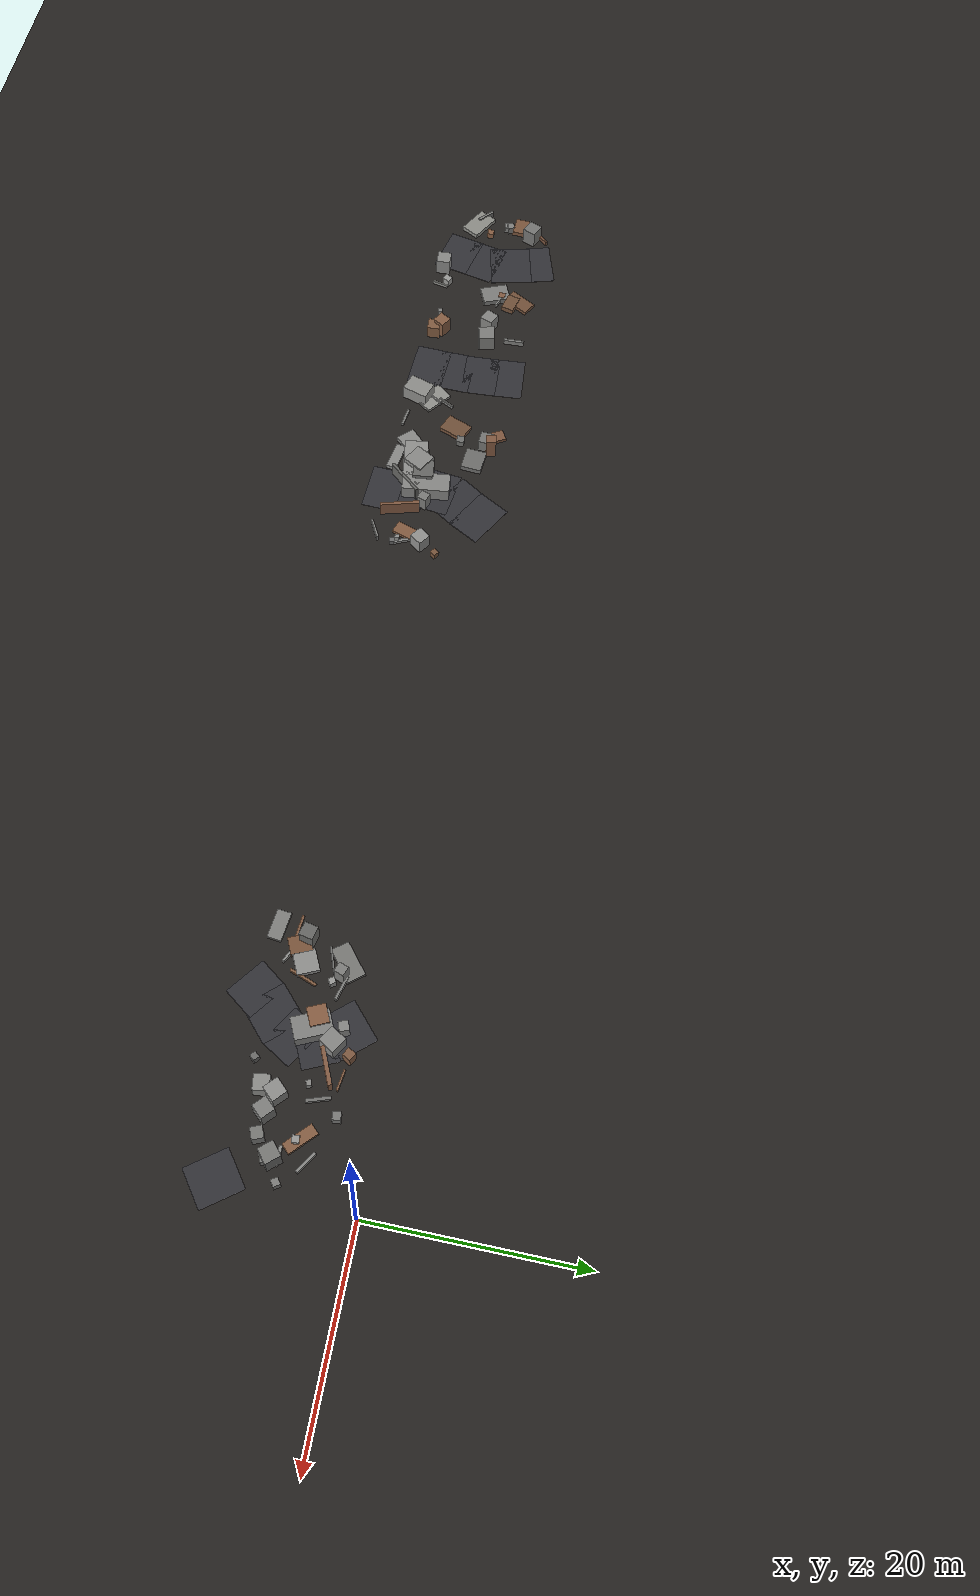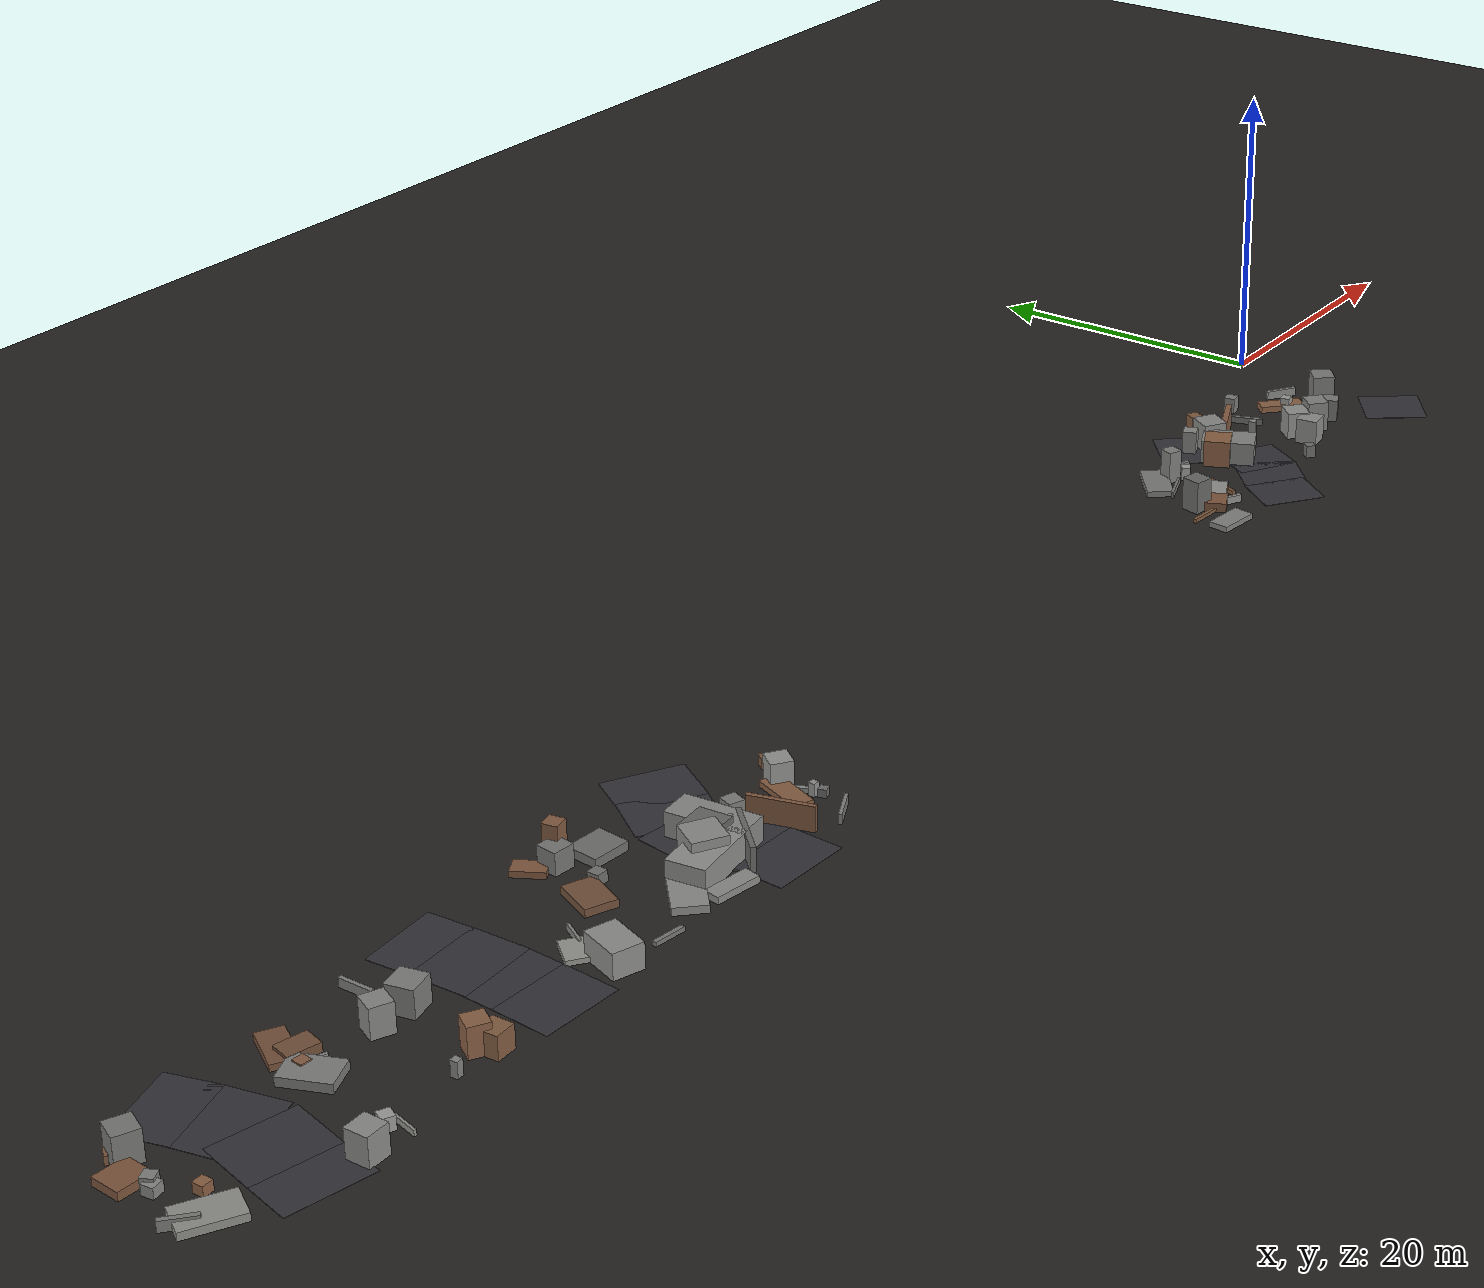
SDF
<sdf version="1.6">
 <world name="navitas_arena">
  <model name="ground_plane">
   <static>true</static>
   <link name="link">
    <collision name="collision">
     <geometry><plane><normal>0 0 1</normal><size>400 400</size></plane></geometry>
     <surface><friction><ode><mu>0.750</mu><mu2>0.750</mu2></ode></friction></surface>
    </collision>
    <visual name="visual">
     <cast_shadows>false</cast_shadows>
     <geometry><plane><normal>0 0 1</normal><size>400 400</size></plane></geometry>
     <material><ambient>0.150 0.140 0.130 1</ambient><diffuse>0.150 0.140 0.130 1</diffuse></material>
    </visual>
   </link>
  </model>
  <model name="road_kolay_1_7">
   <static>true</static>
   <pose>-107.914 -12.340 0.040 0 0 1.349</pose>
   <link name="link">
    <collision name="col"><geometry><box><size>3.811 5.100 0.020</size></box></geometry></collision>
    <visual name="vis">
     <geometry><box><size>3.811 5.100 0.020</size></box></geometry>
     <material><ambient>0.20 0.20 0.22 1</ambient><diffuse>0.20 0.20 0.22 1</diffuse></material>
    </visual>
   </link>
  </model>
  <model name="road_kolay_1_8">
   <static>true</static>
   <pose>-107.250 -9.460 0.040 0 0 1.339</pose>
   <link name="link">
    <collision name="col"><geometry><box><size>3.900 5.100 0.020</size></box></geometry></collision>
    <visual name="vis">
     <geometry><box><size>3.900 5.100 0.020</size></box></geometry>
     <material><ambient>0.20 0.20 0.22 1</ambient><diffuse>0.20 0.20 0.22 1</diffuse></material>
    </visual>
   </link>
  </model>
  <model name="road_kolay_1_9">
   <static>true</static>
   <pose>-107.311 -6.250 0.040 0 0 1.798</pose>
   <link name="link">
    <collision name="col"><geometry><box><size>4.493 5.100 0.020</size></box></geometry></collision>
    <visual name="vis">
     <geometry><box><size>4.493 5.100 0.020</size></box></geometry>
     <material><ambient>0.20 0.20 0.22 1</ambient><diffuse>0.20 0.20 0.22 1</diffuse></material>
    </visual>
   </link>
  </model>
  <model name="road_kolay_1_10">
   <static>true</static>
   <pose>-108.060 -3.333 0.040 0 0 1.857</pose>
   <link name="link">
    <collision name="col"><geometry><box><size>3.332 5.100 0.020</size></box></geometry></collision>
    <visual name="vis">
     <geometry><box><size>3.332 5.100 0.020</size></box></geometry>
     <material><ambient>0.20 0.20 0.22 1</ambient><diffuse>0.20 0.20 0.22 1</diffuse></material>
    </visual>
   </link>
  </model>
  <model name="road_kolay_2_3">
   <static>true</static>
   <pose>-90.850 -12.340 0.040 0 0 1.516</pose>
   <link name="link">
    <collision name="col"><geometry><box><size>3.744 5.100 0.020</size></box></geometry></collision>
    <visual name="vis">
     <geometry><box><size>3.744 5.100 0.020</size></box></geometry>
     <material><ambient>0.20 0.20 0.22 1</ambient><diffuse>0.20 0.20 0.22 1</diffuse></material>
    </visual>
   </link>
  </model>
  <model name="road_kolay_2_4">
   <static>true</static>
   <pose>-90.716 -9.460 0.040 0 0 1.532</pose>
   <link name="link">
    <collision name="col"><geometry><box><size>3.822 5.100 0.020</size></box></geometry></collision>
    <visual name="vis">
     <geometry><box><size>3.822 5.100 0.020</size></box></geometry>
     <material><ambient>0.20 0.20 0.22 1</ambient><diffuse>0.20 0.20 0.22 1</diffuse></material>
    </visual>
   </link>
  </model>
  <model name="road_kolay_2_5">
   <static>true</static>
   <pose>-90.721 -6.600 0.040 0 0 1.615</pose>
   <link name="link">
    <collision name="col"><geometry><box><size>3.703 5.100 0.020</size></box></geometry></collision>
    <visual name="vis">
     <geometry><box><size>3.703 5.100 0.020</size></box></geometry>
     <material><ambient>0.20 0.20 0.22 1</ambient><diffuse>0.20 0.20 0.22 1</diffuse></material>
    </visual>
   </link>
  </model>
  <model name="road_kolay_2_6">
   <static>true</static>
   <pose>-90.887 -3.800 0.040 0 0 1.645</pose>
   <link name="link">
    <collision name="col"><geometry><box><size>3.708 5.100 0.020</size></box></geometry></collision>
    <visual name="vis">
     <geometry><box><size>3.708 5.100 0.020</size></box></geometry>
     <material><ambient>0.20 0.20 0.22 1</ambient><diffuse>0.20 0.20 0.22 1</diffuse></material>
    </visual>
   </link>
  </model>
  <model name="road_kolay_3_6">
   <static>true</static>
   <pose>-73.682 -13.690 0.040 0 0 1.525</pose>
   <link name="link">
    <collision name="col"><geometry><box><size>3.523 5.100 0.020</size></box></geometry></collision>
    <visual name="vis">
     <geometry><box><size>3.523 5.100 0.020</size></box></geometry>
     <material><ambient>0.20 0.20 0.22 1</ambient><diffuse>0.20 0.20 0.22 1</diffuse></material>
    </visual>
   </link>
  </model>
  <model name="road_kolay_3_7">
   <static>true</static>
   <pose>-74.116 -10.910 0.040 0 0 1.894</pose>
   <link name="link">
    <collision name="col"><geometry><box><size>4.001 5.100 0.020</size></box></geometry></collision>
    <visual name="vis">
     <geometry><box><size>4.001 5.100 0.020</size></box></geometry>
     <material><ambient>0.20 0.20 0.22 1</ambient><diffuse>0.20 0.20 0.22 1</diffuse></material>
    </visual>
   </link>
  </model>
  <model name="road_kolay_3_8">
   <static>true</static>
   <pose>-74.431 -8.137 0.040 0 0 1.435</pose>
   <link name="link">
    <collision name="col"><geometry><box><size>3.531 5.100 0.020</size></box></geometry></collision>
    <visual name="vis">
     <geometry><box><size>3.531 5.100 0.020</size></box></geometry>
     <material><ambient>0.20 0.20 0.22 1</ambient><diffuse>0.20 0.20 0.22 1</diffuse></material>
    </visual>
   </link>
  </model>
  <model name="road_kolay_3_9">
   <static>true</static>
   <pose>-73.483 -5.667 0.040 0 0 0.988</pose>
   <link name="link">
    <collision name="col"><geometry><box><size>3.695 5.100 0.020</size></box></geometry></collision>
    <visual name="vis">
     <geometry><box><size>3.695 5.100 0.020</size></box></geometry>
     <material><ambient>0.20 0.20 0.22 1</ambient><diffuse>0.20 0.20 0.22 1</diffuse></material>
    </visual>
   </link>
  </model>
  <model name="road_kolay_3_10">
   <static>true</static>
   <pose>-72.039 -3.333 0.040 0 0 1.047</pose>
   <link name="link">
    <collision name="col"><geometry><box><size>3.595 5.100 0.020</size></box></geometry></collision>
    <visual name="vis">
     <geometry><box><size>3.595 5.100 0.020</size></box></geometry>
     <material><ambient>0.20 0.20 0.22 1</ambient><diffuse>0.20 0.20 0.22 1</diffuse></material>
    </visual>
   </link>
  </model>
  <model name="blk_kolay_1_0_1">
   <static>true</static>
   <pose>-105.365 -13.594 0.898 0 0 0.024</pose>
   <link name="link">
    <collision name="col"><geometry><box><size>1.462 1.462 1.797</size></box></geometry></collision>
    <visual name="vis">
     <geometry><box><size>1.462 1.462 1.797</size></box></geometry>
     <material><ambient>0.55 0.55 0.54 1</ambient><diffuse>0.55 0.55 0.54 1</diffuse></material>
    </visual>
   </link>
  </model>
  <model name="blk_kolay_3_0_0">
   <static>true</static>
   <pose>-72.522 -9.231 0.800 0 0 2.797</pose>
   <link name="link">
    <collision name="col"><geometry><box><size>0.989 0.989 1.600</size></box></geometry></collision>
    <visual name="vis">
     <geometry><box><size>0.989 0.989 1.600</size></box></geometry>
     <material><ambient>0.49 0.49 0.48 1</ambient><diffuse>0.49 0.49 0.48 1</diffuse></material>
    </visual>
   </link>
  </model>
  <model name="blk_kolay_3_0_1">
   <static>true</static>
   <pose>-74.504 -11.638 0.800 0 0 0.842</pose>
   <link name="link">
    <collision name="col"><geometry><box><size>4.191 0.314 1.600</size></box></geometry></collision>
    <visual name="vis">
     <geometry><box><size>4.191 0.314 1.600</size></box></geometry>
     <material><ambient>0.41 0.41 0.40 1</ambient><diffuse>0.41 0.41 0.40 1</diffuse></material>
    </visual>
   </link>
  </model>
  <model name="blk_kolay_3_0_2">
   <static>true</static>
   <pose>-74.145 -10.344 0.800 0 0 3.007</pose>
   <link name="link">
    <collision name="col"><geometry><box><size>0.618 0.618 1.600</size></box></geometry></collision>
    <visual name="vis">
     <geometry><box><size>0.618 0.618 1.600</size></box></geometry>
     <material><ambient>0.55 0.55 0.53 1</ambient><diffuse>0.55 0.55 0.53 1</diffuse></material>
    </visual>
   </link>
  </model>
  <model name="blk_kolay_3_0_3">
   <static>true</static>
   <pose>-76.757 -10.581 1.089 0 0 1.039</pose>
   <link name="link">
    <collision name="col"><geometry><box><size>2.173 2.173 2.178</size></box></geometry></collision>
    <visual name="vis">
     <geometry><box><size>2.173 2.173 2.178</size></box></geometry>
     <material><ambient>0.55 0.55 0.54 1</ambient><diffuse>0.55 0.55 0.54 1</diffuse></material>
    </visual>
   </link>
  </model>
  <model name="blk_kolay_3_0_4">
   <static>true</static>
   <pose>-75.678 -9.895 1.007 0 0 1.660</pose>
   <link name="link">
    <collision name="col"><geometry><box><size>2.089 2.089 2.014</size></box></geometry></collision>
    <visual name="vis">
     <geometry><box><size>2.089 2.089 2.014</size></box></geometry>
     <material><ambient>0.41 0.41 0.40 1</ambient><diffuse>0.41 0.41 0.40 1</diffuse></material>
    </visual>
   </link>
  </model>
  <model name="blk_kolay_3_0_5">
   <static>true</static>
   <pose>-71.123 -11.456 0.800 0 0 1.843</pose>
   <link name="link">
    <collision name="col"><geometry><box><size>4.054 0.293 1.600</size></box></geometry></collision>
    <visual name="vis">
     <geometry><box><size>4.054 0.293 1.600</size></box></geometry>
     <material><ambient>0.52 0.36 0.26 1</ambient><diffuse>0.52 0.36 0.26 1</diffuse></material>
    </visual>
   </link>
  </model>
  <model name="blk_kolay_3_0_6">
   <static>true</static>
   <pose>-74.360 -9.366 0.800 0 0 1.675</pose>
   <link name="link">
    <collision name="col"><geometry><box><size>4.912 2.156 1.600</size></box></geometry></collision>
    <visual name="vis">
     <geometry><box><size>4.912 2.156 1.600</size></box></geometry>
     <material><ambient>0.54 0.54 0.53 1</ambient><diffuse>0.54 0.54 0.53 1</diffuse></material>
    </visual>
   </link>
  </model>
  <model name="blk_kolay_3_0_7">
   <static>true</static>
   <pose>-77.112 -11.044 0.800 0 0 0.140</pose>
   <link name="link">
    <collision name="col"><geometry><box><size>4.483 2.449 1.600</size></box></geometry></collision>
    <visual name="vis">
     <geometry><box><size>4.483 2.449 1.600</size></box></geometry>
     <material><ambient>0.57 0.57 0.56 1</ambient><diffuse>0.57 0.57 0.56 1</diffuse></material>
    </visual>
   </link>
  </model>
  <model name="deb_kolay_4">
   <static>true</static>
   <pose>-81.219 -7.013 0.354 0 0 1.566</pose>
   <link name="link">
    <collision name="col"><geometry><box><size>0.773 0.773 0.708</size></box></geometry></collision>
    <visual name="vis">
     <geometry><box><size>0.773 0.773 0.708</size></box></geometry>
     <material><ambient>0.45 0.45 0.44 1</ambient><diffuse>0.45 0.45 0.44 1</diffuse></material>
    </visual>
   </link>
  </model>
  <model name="deb_kolay_7">
   <static>true</static>
   <pose>-81.313 -4.267 0.345 0 0 1.541</pose>
   <link name="link">
    <collision name="col"><geometry><box><size>0.589 0.589 0.691</size></box></geometry></collision>
    <visual name="vis">
     <geometry><box><size>0.589 0.589 0.691</size></box></geometry>
     <material><ambient>0.55 0.38 0.27 1</ambient><diffuse>0.55 0.38 0.27 1</diffuse></material>
    </visual>
   </link>
  </model>
  <model name="deb_kolay_9">
   <static>true</static>
   <pose>-113.869 -10.311 0.315 0 0 2.405</pose>
   <link name="link">
    <collision name="col"><geometry><box><size>1.960 0.285 0.629</size></box></geometry></collision>
    <visual name="vis">
     <geometry><box><size>1.960 0.285 0.629</size></box></geometry>
     <material><ambient>0.48 0.48 0.47 1</ambient><diffuse>0.48 0.48 0.47 1</diffuse></material>
    </visual>
   </link>
  </model>
  <model name="deb_kolay_11">
   <static>true</static>
   <pose>-77.837 -13.266 0.220 0 0 2.984</pose>
   <link name="link">
    <collision name="col"><geometry><box><size>2.991 1.066 0.440</size></box></geometry></collision>
    <visual name="vis">
     <geometry><box><size>2.991 1.066 0.440</size></box></geometry>
     <material><ambient>0.55 0.55 0.54 1</ambient><diffuse>0.55 0.55 0.54 1</diffuse></material>
    </visual>
   </link>
  </model>
  <model name="deb_kolay_16">
   <static>true</static>
   <pose>-112.637 -7.176 0.412 0 0 0.447</pose>
   <link name="link">
    <collision name="col"><geometry><box><size>0.709 0.709 0.825</size></box></geometry></collision>
    <visual name="vis">
     <geometry><box><size>0.709 0.709 0.825</size></box></geometry>
     <material><ambient>0.51 0.51 0.50 1</ambient><diffuse>0.51 0.51 0.50 1</diffuse></material>
    </visual>
   </link>
  </model>
  <model name="deb_kolay_21">
   <static>true</static>
   <pose>-81.351 -4.280 0.715 0 0 1.473</pose>
   <link name="link">
    <collision name="col"><geometry><box><size>1.376 1.376 1.430</size></box></geometry></collision>
    <visual name="vis">
     <geometry><box><size>1.376 1.376 1.430</size></box></geometry>
     <material><ambient>0.47 0.47 0.46 1</ambient><diffuse>0.47 0.47 0.46 1</diffuse></material>
    </visual>
   </link>
  </model>
  <model name="deb_kolay_23">
   <static>true</static>
   <pose>-86.592 -11.145 0.186 0 0 0.981</pose>
   <link name="link">
    <collision name="col"><geometry><box><size>2.555 0.196 0.371</size></box></geometry></collision>
    <visual name="vis">
     <geometry><box><size>2.555 0.196 0.371</size></box></geometry>
     <material><ambient>0.55 0.55 0.54 1</ambient><diffuse>0.55 0.55 0.54 1</diffuse></material>
    </visual>
   </link>
  </model>
  <model name="deb_kolay_29">
   <static>true</static>
   <pose>-97.701 -6.977 0.923 0 0 2.722</pose>
   <link name="link">
    <collision name="col"><geometry><box><size>1.381 1.381 1.845</size></box></geometry></collision>
    <visual name="vis">
     <geometry><box><size>1.381 1.381 1.845</size></box></geometry>
     <material><ambient>0.53 0.53 0.52 1</ambient><diffuse>0.53 0.53 0.52 1</diffuse></material>
    </visual>
   </link>
  </model>
  <model name="deb_kolay_43">
   <static>true</static>
   <pose>-68.195 -13.481 0.314 0 0 0.472</pose>
   <link name="link">
    <collision name="col"><geometry><box><size>2.260 0.204 0.627</size></box></geometry></collision>
    <visual name="vis">
     <geometry><box><size>2.260 0.204 0.627</size></box></geometry>
     <material><ambient>0.50 0.50 0.49 1</ambient><diffuse>0.50 0.50 0.49 1</diffuse></material>
    </visual>
   </link>
  </model>
  <model name="deb_kolay_52">
   <static>true</static>
   <pose>-80.684 -3.669 1.158 0 0 0.201</pose>
   <link name="link">
    <collision name="col"><geometry><box><size>0.976 0.976 2.316</size></box></geometry></collision>
    <visual name="vis">
     <geometry><box><size>0.976 0.976 2.316</size></box></geometry>
     <material><ambient>0.52 0.36 0.26 1</ambient><diffuse>0.52 0.36 0.26 1</diffuse></material>
    </visual>
   </link>
  </model>
  <model name="deb_kolay_57">
   <static>true</static>
   <pose>-86.055 -9.501 0.208 0 0 1.061</pose>
   <link name="link">
    <collision name="col"><geometry><box><size>1.737 0.166 0.415</size></box></geometry></collision>
    <visual name="vis">
     <geometry><box><size>1.737 0.166 0.415</size></box></geometry>
     <material><ambient>0.53 0.53 0.52 1</ambient><diffuse>0.53 0.53 0.52 1</diffuse></material>
    </visual>
   </link>
  </model>
  <model name="deb_kolay_59">
   <static>true</static>
   <pose>-68.467 -9.803 0.186 0 0 1.217</pose>
   <link name="link">
    <collision name="col"><geometry><box><size>3.468 1.335 0.372</size></box></geometry></collision>
    <visual name="vis">
     <geometry><box><size>3.468 1.335 0.372</size></box></geometry>
     <material><ambient>0.53 0.37 0.26 1</ambient><diffuse>0.53 0.37 0.26 1</diffuse></material>
    </visual>
   </link>
  </model>
  <model name="deb_kolay_64">
   <static>true</static>
   <pose>-102.186 -6.325 0.318 0 0 1.486</pose>
   <link name="link">
    <collision name="col"><geometry><box><size>0.692 0.692 0.637</size></box></geometry></collision>
    <visual name="vis">
     <geometry><box><size>0.692 0.692 0.637</size></box></geometry>
     <material><ambient>0.53 0.37 0.27 1</ambient><diffuse>0.53 0.37 0.27 1</diffuse></material>
    </visual>
   </link>
  </model>
  <model name="deb_kolay_65">
   <static>true</static>
   <pose>-67.254 -11.463 0.256 0 0 1.853</pose>
   <link name="link">
    <collision name="col"><geometry><box><size>0.515 0.515 0.511</size></box></geometry></collision>
    <visual name="vis">
     <geometry><box><size>0.515 0.515 0.511</size></box></geometry>
     <material><ambient>0.43 0.43 0.43 1</ambient><diffuse>0.43 0.43 0.43 1</diffuse></material>
    </visual>
   </link>
  </model>
  <model name="deb_kolay_66">
   <static>true</static>
   <pose>-79.755 -11.827 0.243 0 0 0.767</pose>
   <link name="link">
    <collision name="col"><geometry><box><size>3.297 2.008 0.486</size></box></geometry></collision>
    <visual name="vis">
     <geometry><box><size>3.297 2.008 0.486</size></box></geometry>
     <material><ambient>0.55 0.55 0.54 1</ambient><diffuse>0.55 0.55 0.54 1</diffuse></material>
    </visual>
   </link>
  </model>
  <model name="deb_kolay_67">
   <static>true</static>
   <pose>-86.459 -10.977 0.161 0 0 2.484</pose>
   <link name="link">
    <collision name="col"><geometry><box><size>3.134 1.986 0.322</size></box></geometry></collision>
    <visual name="vis">
     <geometry><box><size>3.134 1.986 0.322</size></box></geometry>
     <material><ambient>0.58 0.58 0.56 1</ambient><diffuse>0.58 0.58 0.56 1</diffuse></material>
    </visual>
   </link>
  </model>
  <model name="deb_kolay_68">
   <static>true</static>
   <pose>-111.932 -3.528 0.254 0 0 0.850</pose>
   <link name="link">
    <collision name="col"><geometry><box><size>1.981 0.216 0.509</size></box></geometry></collision>
    <visual name="vis">
     <geometry><box><size>1.981 0.216 0.509</size></box></geometry>
     <material><ambient>0.49 0.34 0.25 1</ambient><diffuse>0.49 0.34 0.25 1</diffuse></material>
    </visual>
   </link>
  </model>
  <model name="deb_kolay_71">
   <static>true</static>
   <pose>-67.532 -10.427 0.159 0 0 1.993</pose>
   <link name="link">
    <collision name="col"><geometry><box><size>2.015 0.279 0.317</size></box></geometry></collision>
    <visual name="vis">
     <geometry><box><size>2.015 0.279 0.317</size></box></geometry>
     <material><ambient>0.55 0.55 0.54 1</ambient><diffuse>0.55 0.55 0.54 1</diffuse></material>
    </visual>
   </link>
  </model>
  <model name="deb_kolay_72">
   <static>true</static>
   <pose>-98.347 -12.657 0.486 0 0 0.090</pose>
   <link name="link">
    <collision name="col"><geometry><box><size>0.442 0.442 0.971</size></box></geometry></collision>
    <visual name="vis">
     <geometry><box><size>0.442 0.442 0.971</size></box></geometry>
     <material><ambient>0.52 0.52 0.51 1</ambient><diffuse>0.52 0.52 0.51 1</diffuse></material>
    </visual>
   </link>
  </model>
  <model name="deb_kolay_79">
   <static>true</static>
   <pose>-83.307 -13.432 0.138 0 0 3.005</pose>
   <link name="link">
    <collision name="col"><geometry><box><size>2.016 0.261 0.276</size></box></geometry></collision>
    <visual name="vis">
     <geometry><box><size>2.016 0.261 0.276</size></box></geometry>
     <material><ambient>0.47 0.47 0.46 1</ambient><diffuse>0.47 0.47 0.46 1</diffuse></material>
    </visual>
   </link>
  </model>
  <model name="deb_kolay_82">
   <static>true</static>
   <pose>-112.814 -7.509 0.317 0 0 1.705</pose>
   <link name="link">
    <collision name="col"><geometry><box><size>0.739 0.739 0.635</size></box></geometry></collision>
    <visual name="vis">
     <geometry><box><size>0.739 0.739 0.635</size></box></geometry>
     <material><ambient>0.54 0.54 0.53 1</ambient><diffuse>0.54 0.54 0.53 1</diffuse></material>
    </visual>
   </link>
  </model>
  <model name="deb_kolay_92">
   <static>true</static>
   <pose>-113.056 -5.855 0.258 0 0 1.501</pose>
   <link name="link">
    <collision name="col"><geometry><box><size>1.849 2.028 0.516</size></box></geometry></collision>
    <visual name="vis">
     <geometry><box><size>1.849 2.028 0.516</size></box></geometry>
     <material><ambient>0.49 0.34 0.24 1</ambient><diffuse>0.49 0.34 0.24 1</diffuse></material>
    </visual>
   </link>
  </model>
  <model name="deb_kolay_94">
   <static>true</static>
   <pose>-95.751 -12.819 0.721 0 0 0.044</pose>
   <link name="link">
    <collision name="col"><geometry><box><size>1.322 1.322 1.443</size></box></geometry></collision>
    <visual name="vis">
     <geometry><box><size>1.322 1.322 1.443</size></box></geometry>
     <material><ambient>0.52 0.37 0.26 1</ambient><diffuse>0.52 0.37 0.26 1</diffuse></material>
    </visual>
   </link>
  </model>
  <model name="deb_kolay_95">
   <static>true</static>
   <pose>-101.329 -5.172 0.292 0 0 2.899</pose>
   <link name="link">
    <collision name="col"><geometry><box><size>1.952 1.341 0.585</size></box></geometry></collision>
    <visual name="vis">
     <geometry><box><size>1.952 1.341 0.585</size></box></geometry>
     <material><ambient>0.45 0.32 0.23 1</ambient><diffuse>0.45 0.32 0.23 1</diffuse></material>
    </visual>
   </link>
  </model>
  <model name="deb_kolay_120">
   <static>true</static>
   <pose>-112.657 -10.869 0.235 0 0 2.625</pose>
   <link name="link">
    <collision name="col"><geometry><box><size>3.329 2.028 0.470</size></box></geometry></collision>
    <visual name="vis">
     <geometry><box><size>3.329 2.028 0.470</size></box></geometry>
     <material><ambient>0.56 0.56 0.54 1</ambient><diffuse>0.56 0.56 0.54 1</diffuse></material>
    </visual>
   </link>
  </model>
  <model name="deb_kolay_124">
   <static>true</static>
   <pose>-95.936 -3.861 0.287 0 0 1.590</pose>
   <link name="link">
    <collision name="col"><geometry><box><size>2.185 0.252 0.573</size></box></geometry></collision>
    <visual name="vis">
     <geometry><box><size>2.185 0.252 0.573</size></box></geometry>
     <material><ambient>0.50 0.50 0.49 1</ambient><diffuse>0.50 0.50 0.49 1</diffuse></material>
    </visual>
   </link>
  </model>
  <model name="deb_kolay_125">
   <static>true</static>
   <pose>-111.434 -9.293 0.309 0 0 0.013</pose>
   <link name="link">
    <collision name="col"><geometry><box><size>0.673 0.673 0.618</size></box></geometry></collision>
    <visual name="vis">
     <geometry><box><size>0.673 0.673 0.618</size></box></geometry>
     <material><ambient>0.55 0.38 0.27 1</ambient><diffuse>0.55 0.38 0.27 1</diffuse></material>
    </visual>
   </link>
  </model>
  <model name="deb_kolay_128">
   <static>true</static>
   <pose>-96.234 -12.023 0.922 0 0 2.599</pose>
   <link name="link">
    <collision name="col"><geometry><box><size>1.287 1.287 1.843</size></box></geometry></collision>
    <visual name="vis">
     <geometry><box><size>1.287 1.287 1.843</size></box></geometry>
     <material><ambient>0.54 0.38 0.27 1</ambient><diffuse>0.54 0.38 0.27 1</diffuse></material>
    </visual>
   </link>
  </model>
  <model name="deb_kolay_132">
   <static>true</static>
   <pose>-102.349 -7.126 0.279 0 0 1.965</pose>
   <link name="link">
    <collision name="col"><geometry><box><size>2.986 2.098 0.559</size></box></geometry></collision>
    <visual name="vis">
     <geometry><box><size>2.986 2.098 0.559</size></box></geometry>
     <material><ambient>0.50 0.50 0.49 1</ambient><diffuse>0.50 0.50 0.49 1</diffuse></material>
    </visual>
   </link>
  </model>
  <model name="deb_kolay_141">
   <static>true</static>
   <pose>-66.482 -6.878 0.326 0 0 0.937</pose>
   <link name="link">
    <collision name="col"><geometry><box><size>0.641 0.641 0.653</size></box></geometry></collision>
    <visual name="vis">
     <geometry><box><size>0.641 0.641 0.653</size></box></geometry>
     <material><ambient>0.48 0.34 0.24 1</ambient><diffuse>0.48 0.34 0.24 1</diffuse></material>
    </visual>
   </link>
  </model>
  <model name="deb_kolay_160">
   <static>true</static>
   <pose>-67.531 -10.990 0.421 0 0 1.484</pose>
   <link name="link">
    <collision name="col"><geometry><box><size>0.401 0.401 0.843</size></box></geometry></collision>
    <visual name="vis">
     <geometry><box><size>0.401 0.401 0.843</size></box></geometry>
     <material><ambient>0.57 0.57 0.56 1</ambient><diffuse>0.57 0.57 0.56 1</diffuse></material>
    </visual>
   </link>
  </model>
  <model name="deb_kolay_161">
   <static>true</static>
   <pose>-102.785 -13.474 0.179 0 0 1.333</pose>
   <link name="link">
    <collision name="col"><geometry><box><size>1.646 0.157 0.359</size></box></geometry></collision>
    <visual name="vis">
     <geometry><box><size>1.646 0.157 0.359</size></box></geometry>
     <material><ambient>0.57 0.57 0.55 1</ambient><diffuse>0.57 0.57 0.55 1</diffuse></material>
    </visual>
   </link>
  </model>
  <model name="deb_kolay_162">
   <static>true</static>
   <pose>-82.848 -7.842 0.248 0 0 1.173</pose>
   <link name="link">
    <collision name="col"><geometry><box><size>2.741 1.976 0.495</size></box></geometry></collision>
    <visual name="vis">
     <geometry><box><size>2.741 1.976 0.495</size></box></geometry>
     <material><ambient>0.45 0.32 0.23 1</ambient><diffuse>0.45 0.32 0.23 1</diffuse></material>
    </visual>
   </link>
  </model>
  <model name="deb_kolay_174">
   <static>true</static>
   <pose>-82.518 -3.489 0.203 0 0 2.081</pose>
   <link name="link">
    <collision name="col"><geometry><box><size>2.015 1.199 0.405</size></box></geometry></collision>
    <visual name="vis">
     <geometry><box><size>2.015 1.199 0.405</size></box></geometry>
     <material><ambient>0.51 0.35 0.25 1</ambient><diffuse>0.51 0.35 0.25 1</diffuse></material>
    </visual>
   </link>
  </model>
  <model name="deb_kolay_185">
   <static>true</static>
   <pose>-78.958 -5.154 0.290 0 0 3.056</pose>
   <link name="link">
    <collision name="col"><geometry><box><size>2.472 2.141 0.580</size></box></geometry></collision>
    <visual name="vis">
     <geometry><box><size>2.472 2.141 0.580</size></box></geometry>
     <material><ambient>0.44 0.44 0.43 1</ambient><diffuse>0.44 0.44 0.43 1</diffuse></material>
    </visual>
   </link>
  </model>
  <model name="deb_kolay_186">
   <static>true</static>
   <pose>-103.281 -12.751 0.416 0 0 1.106</pose>
   <link name="link">
    <collision name="col"><geometry><box><size>0.756 0.756 0.832</size></box></geometry></collision>
    <visual name="vis">
     <geometry><box><size>0.756 0.756 0.832</size></box></geometry>
     <material><ambient>0.62 0.62 0.61 1</ambient><diffuse>0.62 0.62 0.61 1</diffuse></material>
    </visual>
   </link>
  </model>
  <model name="deb_kolay_187">
   <static>true</static>
   <pose>-101.778 -4.252 0.204 0 0 1.047</pose>
   <link name="link">
    <collision name="col"><geometry><box><size>2.949 1.584 0.407</size></box></geometry></collision>
    <visual name="vis">
     <geometry><box><size>2.949 1.584 0.407</size></box></geometry>
     <material><ambient>0.46 0.32 0.23 1</ambient><diffuse>0.46 0.32 0.23 1</diffuse></material>
    </visual>
   </link>
  </model>
  <model name="deb_kolay_190">
   <static>true</static>
   <pose>-67.516 -8.583 0.804 0 0 2.513</pose>
   <link name="link">
    <collision name="col"><geometry><box><size>1.388 1.388 1.609</size></box></geometry></collision>
    <visual name="vis">
     <geometry><box><size>1.388 1.388 1.609</size></box></geometry>
     <material><ambient>0.58 0.58 0.57 1</ambient><diffuse>0.58 0.58 0.57 1</diffuse></material>
    </visual>
   </link>
  </model>
  <model name="deb_kolay_191">
   <static>true</static>
   <pose>-101.616 -6.469 0.225 0 0 2.774</pose>
   <link name="link">
    <collision name="col"><geometry><box><size>1.549 0.179 0.449</size></box></geometry></collision>
    <visual name="vis">
     <geometry><box><size>1.549 0.179 0.449</size></box></geometry>
     <material><ambient>0.54 0.54 0.53 1</ambient><diffuse>0.54 0.54 0.53 1</diffuse></material>
    </visual>
   </link>
  </model>
  <model name="deb_kolay_192">
   <static>true</static>
   <pose>-111.732 -4.555 0.932 0 0 2.722</pose>
   <link name="link">
    <collision name="col"><geometry><box><size>1.482 1.482 1.863</size></box></geometry></collision>
    <visual name="vis">
     <geometry><box><size>1.482 1.482 1.863</size></box></geometry>
     <material><ambient>0.47 0.47 0.46 1</ambient><diffuse>0.47 0.47 0.46 1</diffuse></material>
    </visual>
   </link>
  </model>
  <model name="chic_kolay_1">
   <static>true</static>
   <pose>-86.647 -12.660 0.800 0 0 1.250</pose>
   <link name="link">
    <collision name="col"><geometry><box><size>2.684 1.925 1.600</size></box></geometry></collision>
    <visual name="vis">
     <geometry><box><size>2.684 1.925 1.600</size></box></geometry>
     <material><ambient>0.56 0.56 0.55 1</ambient><diffuse>0.56 0.56 0.55 1</diffuse></material>
    </visual>
   </link>
  </model>
  <model name="chic_kolay_2">
   <static>true</static>
   <pose>-95.430 -6.874 0.857 0 0 1.804</pose>
   <link name="link">
    <collision name="col"><geometry><box><size>1.683 1.683 1.715</size></box></geometry></collision>
    <visual name="vis">
     <geometry><box><size>1.683 1.683 1.715</size></box></geometry>
     <material><ambient>0.50 0.50 0.49 1</ambient><diffuse>0.50 0.50 0.49 1</diffuse></material>
    </visual>
   </link>
  </model>
  <model name="road_orta_1_9">
   <static>true</static>
   <pose>-17.714 -13.153 0.040 0 0 0.937</pose>
   <link name="link">
    <collision name="col"><geometry><box><size>3.328 4.250 0.020</size></box></geometry></collision>
    <visual name="vis">
     <geometry><box><size>3.328 4.250 0.020</size></box></geometry>
     <material><ambient>0.20 0.20 0.22 1</ambient><diffuse>0.20 0.20 0.22 1</diffuse></material>
    </visual>
   </link>
  </model>
  <model name="road_orta_1_10">
   <static>true</static>
   <pose>-15.852 -11.124 0.040 0 0 0.743</pose>
   <link name="link">
    <collision name="col"><geometry><box><size>4.006 4.250 0.020</size></box></geometry></collision>
    <visual name="vis">
     <geometry><box><size>4.006 4.250 0.020</size></box></geometry>
     <material><ambient>0.20 0.20 0.22 1</ambient><diffuse>0.20 0.20 0.22 1</diffuse></material>
    </visual>
   </link>
  </model>
  <model name="road_orta_1_11">
   <static>true</static>
   <pose>-14.089 -9.036 0.040 0 0 1.032</pose>
   <link name="link">
    <collision name="col"><geometry><box><size>3.315 4.250 0.020</size></box></geometry></collision>
    <visual name="vis">
     <geometry><box><size>3.315 4.250 0.020</size></box></geometry>
     <material><ambient>0.20 0.20 0.22 1</ambient><diffuse>0.20 0.20 0.22 1</diffuse></material>
    </visual>
   </link>
  </model>
  <model name="road_orta_1_12">
   <static>true</static>
   <pose>-14.009 -6.833 0.040 0 0 2.003</pose>
   <link name="link">
    <collision name="col"><geometry><box><size>3.470 4.250 0.020</size></box></geometry></collision>
    <visual name="vis">
     <geometry><box><size>3.470 4.250 0.020</size></box></geometry>
     <material><ambient>0.20 0.20 0.22 1</ambient><diffuse>0.20 0.20 0.22 1</diffuse></material>
    </visual>
   </link>
  </model>
  <model name="road_orta_1_13">
   <static>true</static>
   <pose>-15.585 -4.500 0.040 0 0 2.297</pose>
   <link name="link">
    <collision name="col"><geometry><box><size>4.022 4.250 0.020</size></box></geometry></collision>
    <visual name="vis">
     <geometry><box><size>4.022 4.250 0.020</size></box></geometry>
     <material><ambient>0.20 0.20 0.22 1</ambient><diffuse>0.20 0.20 0.22 1</diffuse></material>
    </visual>
   </link>
  </model>
  <model name="road_orta_2_4">
   <static>true</static>
   <pose>-0.830 -12.541 0.040 0 0 0.637</pose>
   <link name="link">
    <collision name="col"><geometry><box><size>3.876 4.250 0.020</size></box></geometry></collision>
    <visual name="vis">
     <geometry><box><size>3.876 4.250 0.020</size></box></geometry>
     <material><ambient>0.20 0.20 0.22 1</ambient><diffuse>0.20 0.20 0.22 1</diffuse></material>
    </visual>
   </link>
  </model>
  <model name="blk_orta_1_1_0">
   <static>true</static>
   <pose>-13.185 -3.632 0.800 0 0 1.074</pose>
   <link name="link">
    <collision name="col"><geometry><box><size>0.835 0.835 1.600</size></box></geometry></collision>
    <visual name="vis">
     <geometry><box><size>0.835 0.835 1.600</size></box></geometry>
     <material><ambient>0.51 0.36 0.26 1</ambient><diffuse>0.51 0.36 0.26 1</diffuse></material>
    </visual>
   </link>
  </model>
  <model name="blk_orta_1_1_1">
   <static>true</static>
   <pose>-14.069 -5.321 0.980 0 0 2.590</pose>
   <link name="link">
    <collision name="col"><geometry><box><size>1.676 1.676 1.960</size></box></geometry></collision>
    <visual name="vis">
     <geometry><box><size>1.676 1.676 1.960</size></box></geometry>
     <material><ambient>0.54 0.54 0.53 1</ambient><diffuse>0.54 0.54 0.53 1</diffuse></material>
    </visual>
   </link>
  </model>
  <model name="blk_orta_1_1_2">
   <static>true</static>
   <pose>-15.537 -4.665 0.800 0 0 0.366</pose>
   <link name="link">
    <collision name="col"><geometry><box><size>0.915 0.915 1.600</size></box></geometry></collision>
    <visual name="vis">
     <geometry><box><size>0.915 0.915 1.600</size></box></geometry>
     <material><ambient>0.54 0.54 0.53 1</ambient><diffuse>0.54 0.54 0.53 1</diffuse></material>
    </visual>
   </link>
  </model>
  <model name="blk_orta_1_1_3">
   <static>true</static>
   <pose>-11.820 -5.348 0.800 0 0 0.410</pose>
   <link name="link">
    <collision name="col"><geometry><box><size>3.514 0.388 1.600</size></box></geometry></collision>
    <visual name="vis">
     <geometry><box><size>3.514 0.388 1.600</size></box></geometry>
     <material><ambient>0.53 0.37 0.27 1</ambient><diffuse>0.53 0.37 0.27 1</diffuse></material>
    </visual>
   </link>
  </model>
  <model name="blk_orta_1_1_4">
   <static>true</static>
   <pose>-15.984 -7.047 0.911 0 0 0.433</pose>
   <link name="link">
    <collision name="col"><geometry><box><size>1.765 1.765 1.823</size></box></geometry></collision>
    <visual name="vis">
     <geometry><box><size>1.765 1.765 1.823</size></box></geometry>
     <material><ambient>0.55 0.38 0.27 1</ambient><diffuse>0.55 0.38 0.27 1</diffuse></material>
    </visual>
   </link>
  </model>
  <model name="blk_orta_1_1_5">
   <static>true</static>
   <pose>-15.084 -7.385 0.800 0 0 2.002</pose>
   <link name="link">
    <collision name="col"><geometry><box><size>3.557 2.144 1.600</size></box></geometry></collision>
    <visual name="vis">
     <geometry><box><size>3.557 2.144 1.600</size></box></geometry>
     <material><ambient>0.52 0.52 0.51 1</ambient><diffuse>0.52 0.52 0.51 1</diffuse></material>
    </visual>
   </link>
  </model>
  <model name="deb_orta_7">
   <static>true</static>
   <pose>-3.162 -8.784 0.524 0 0 1.964</pose>
   <link name="link">
    <collision name="col"><geometry><box><size>0.658 0.658 1.048</size></box></geometry></collision>
    <visual name="vis">
     <geometry><box><size>0.658 0.658 1.048</size></box></geometry>
     <material><ambient>0.50 0.50 0.49 1</ambient><diffuse>0.50 0.50 0.49 1</diffuse></material>
    </visual>
   </link>
  </model>
  <model name="deb_orta_10">
   <static>true</static>
   <pose>-3.645 -5.215 0.297 0 0 2.566</pose>
   <link name="link">
    <collision name="col"><geometry><box><size>2.227 0.234 0.593</size></box></geometry></collision>
    <visual name="vis">
     <geometry><box><size>2.227 0.234 0.593</size></box></geometry>
     <material><ambient>0.54 0.54 0.53 1</ambient><diffuse>0.54 0.54 0.53 1</diffuse></material>
    </visual>
   </link>
  </model>
  <model name="deb_orta_26">
   <static>true</static>
   <pose>-23.920 -12.589 0.193 0 0 3.027</pose>
   <link name="link">
    <collision name="col"><geometry><box><size>2.818 1.349 0.386</size></box></geometry></collision>
    <visual name="vis">
     <geometry><box><size>2.818 1.349 0.386</size></box></geometry>
     <material><ambient>0.51 0.51 0.50 1</ambient><diffuse>0.51 0.51 0.50 1</diffuse></material>
    </visual>
   </link>
  </model>
  <model name="deb_orta_44">
   <static>true</static>
   <pose>-7.445 -9.554 0.363 0 0 2.101</pose>
   <link name="link">
    <collision name="col"><geometry><box><size>0.759 0.759 0.727</size></box></geometry></collision>
    <visual name="vis">
     <geometry><box><size>0.759 0.759 0.727</size></box></geometry>
     <material><ambient>0.47 0.47 0.46 1</ambient><diffuse>0.47 0.47 0.46 1</diffuse></material>
    </visual>
   </link>
  </model>
  <model name="deb_orta_64">
   <static>true</static>
   <pose>-21.308 -11.075 0.254 0 0 2.665</pose>
   <link name="link">
    <collision name="col"><geometry><box><size>1.545 0.208 0.509</size></box></geometry></collision>
    <visual name="vis">
     <geometry><box><size>1.545 0.208 0.509</size></box></geometry>
     <material><ambient>0.57 0.57 0.56 1</ambient><diffuse>0.57 0.57 0.56 1</diffuse></material>
    </visual>
   </link>
  </model>
  <model name="deb_orta_65">
   <static>true</static>
   <pose>-22.449 -10.277 0.312 0 0 2.000</pose>
   <link name="link">
    <collision name="col"><geometry><box><size>2.047 1.652 0.623</size></box></geometry></collision>
    <visual name="vis">
     <geometry><box><size>2.047 1.652 0.623</size></box></geometry>
     <material><ambient>0.49 0.34 0.24 1</ambient><diffuse>0.49 0.34 0.24 1</diffuse></material>
    </visual>
   </link>
  </model>
  <model name="deb_orta_72">
   <static>true</static>
   <pose>-21.657 -7.115 0.220 0 0 0.353</pose>
   <link name="link">
    <collision name="col"><geometry><box><size>2.467 0.178 0.440</size></box></geometry></collision>
    <visual name="vis">
     <geometry><box><size>2.467 0.178 0.440</size></box></geometry>
     <material><ambient>0.45 0.45 0.44 1</ambient><diffuse>0.45 0.45 0.44 1</diffuse></material>
    </visual>
   </link>
  </model>
  <model name="deb_orta_77">
   <static>true</static>
   <pose>-19.216 -5.728 0.297 0 0 2.878</pose>
   <link name="link">
    <collision name="col"><geometry><box><size>2.313 0.240 0.595</size></box></geometry></collision>
    <visual name="vis">
     <geometry><box><size>2.313 0.240 0.595</size></box></geometry>
     <material><ambient>0.49 0.49 0.48 1</ambient><diffuse>0.49 0.49 0.48 1</diffuse></material>
    </visual>
   </link>
  </model>
  <model name="deb_orta_78">
   <static>true</static>
   <pose>-21.723 -5.702 0.197 0 0 0.678</pose>
   <link name="link">
    <collision name="col"><geometry><box><size>3.462 1.772 0.395</size></box></geometry></collision>
    <visual name="vis">
     <geometry><box><size>3.462 1.772 0.395</size></box></geometry>
     <material><ambient>0.48 0.48 0.47 1</ambient><diffuse>0.48 0.48 0.47 1</diffuse></material>
    </visual>
   </link>
  </model>
  <model name="deb_orta_81">
   <static>true</static>
   <pose>-7.059 -9.670 1.046 0 0 0.827</pose>
   <link name="link">
    <collision name="col"><geometry><box><size>1.434 1.434 2.091</size></box></geometry></collision>
    <visual name="vis">
     <geometry><box><size>1.434 1.434 2.091</size></box></geometry>
     <material><ambient>0.51 0.51 0.50 1</ambient><diffuse>0.51 0.51 0.50 1</diffuse></material>
    </visual>
   </link>
  </model>
  <model name="deb_orta_89">
   <static>true</static>
   <pose>-5.005 -9.775 0.768 0 0 1.978</pose>
   <link name="link">
    <collision name="col"><geometry><box><size>1.086 1.086 1.535</size></box></geometry></collision>
    <visual name="vis">
     <geometry><box><size>1.086 1.086 1.535</size></box></geometry>
     <material><ambient>0.48 0.48 0.47 1</ambient><diffuse>0.48 0.48 0.47 1</diffuse></material>
    </visual>
   </link>
  </model>
  <model name="deb_orta_91">
   <static>true</static>
   <pose>-11.155 -3.942 0.209 0 0 3.006</pose>
   <link name="link">
    <collision name="col"><geometry><box><size>1.925 0.178 0.417</size></box></geometry></collision>
    <visual name="vis">
     <geometry><box><size>1.925 0.178 0.417</size></box></geometry>
     <material><ambient>0.51 0.36 0.26 1</ambient><diffuse>0.51 0.36 0.26 1</diffuse></material>
    </visual>
   </link>
  </model>
  <model name="deb_orta_110">
   <static>true</static>
   <pose>-3.408 -8.232 1.215 0 0 0.698</pose>
   <link name="link">
    <collision name="col"><geometry><box><size>1.505 1.505 2.431</size></box></geometry></collision>
    <visual name="vis">
     <geometry><box><size>1.505 1.505 2.431</size></box></geometry>
     <material><ambient>0.48 0.48 0.47 1</ambient><diffuse>0.48 0.48 0.47 1</diffuse></material>
    </visual>
   </link>
  </model>
  <model name="deb_orta_118">
   <static>true</static>
   <pose>-9.223 -10.441 0.870 0 0 1.714</pose>
   <link name="link">
    <collision name="col"><geometry><box><size>1.462 1.462 1.740</size></box></geometry></collision>
    <visual name="vis">
     <geometry><box><size>1.462 1.462 1.740</size></box></geometry>
     <material><ambient>0.56 0.56 0.55 1</ambient><diffuse>0.56 0.56 0.55 1</diffuse></material>
    </visual>
   </link>
  </model>
  <model name="deb_orta_119">
   <static>true</static>
   <pose>-5.491 -6.177 0.219 0 0 2.386</pose>
   <link name="link">
    <collision name="col"><geometry><box><size>3.052 1.050 0.439</size></box></geometry></collision>
    <visual name="vis">
     <geometry><box><size>3.052 1.050 0.439</size></box></geometry>
     <material><ambient>0.54 0.38 0.27 1</ambient><diffuse>0.54 0.38 0.27 1</diffuse></material>
    </visual>
   </link>
  </model>
  <model name="deb_orta_133">
   <static>true</static>
   <pose>-23.262 -9.618 1.102 0 0 1.347</pose>
   <link name="link">
    <collision name="col"><geometry><box><size>1.318 1.318 2.204</size></box></geometry></collision>
    <visual name="vis">
     <geometry><box><size>1.318 1.318 2.204</size></box></geometry>
     <material><ambient>0.41 0.41 0.40 1</ambient><diffuse>0.41 0.41 0.40 1</diffuse></material>
    </visual>
   </link>
  </model>
  <model name="deb_orta_142">
   <static>true</static>
   <pose>-3.744 -7.643 0.269 0 0 3.119</pose>
   <link name="link">
    <collision name="col"><geometry><box><size>1.732 0.276 0.539</size></box></geometry></collision>
    <visual name="vis">
     <geometry><box><size>1.732 0.276 0.539</size></box></geometry>
     <material><ambient>0.56 0.56 0.55 1</ambient><diffuse>0.56 0.56 0.55 1</diffuse></material>
    </visual>
   </link>
  </model>
  <model name="deb_orta_143">
   <static>true</static>
   <pose>-8.827 -9.113 0.921 0 0 0.819</pose>
   <link name="link">
    <collision name="col"><geometry><box><size>1.535 1.535 1.842</size></box></geometry></collision>
    <visual name="vis">
     <geometry><box><size>1.535 1.535 1.842</size></box></geometry>
     <material><ambient>0.57 0.57 0.56 1</ambient><diffuse>0.57 0.57 0.56 1</diffuse></material>
    </visual>
   </link>
  </model>
  <model name="deb_orta_151">
   <static>true</static>
   <pose>-20.362 -5.955 1.105 0 0 2.771</pose>
   <link name="link">
    <collision name="col"><geometry><box><size>0.939 0.939 2.210</size></box></geometry></collision>
    <visual name="vis">
     <geometry><box><size>0.939 0.939 2.210</size></box></geometry>
     <material><ambient>0.50 0.50 0.49 1</ambient><diffuse>0.50 0.50 0.49 1</diffuse></material>
    </visual>
   </link>
  </model>
  <model name="deb_orta_152">
   <static>true</static>
   <pose>-11.558 -11.693 0.430 0 0 0.848</pose>
   <link name="link">
    <collision name="col"><geometry><box><size>0.622 0.622 0.860</size></box></geometry></collision>
    <visual name="vis">
     <geometry><box><size>0.622 0.622 0.860</size></box></geometry>
     <material><ambient>0.43 0.43 0.42 1</ambient><diffuse>0.43 0.43 0.42 1</diffuse></material>
    </visual>
   </link>
  </model>
  <model name="deb_orta_155">
   <static>true</static>
   <pose>-9.115 -5.478 0.225 0 0 1.901</pose>
   <link name="link">
    <collision name="col"><geometry><box><size>2.237 0.285 0.449</size></box></geometry></collision>
    <visual name="vis">
     <geometry><box><size>2.237 0.285 0.449</size></box></geometry>
     <material><ambient>0.46 0.46 0.45 1</ambient><diffuse>0.46 0.46 0.45 1</diffuse></material>
    </visual>
   </link>
  </model>
  <model name="deb_orta_156">
   <static>true</static>
   <pose>-10.237 -6.566 0.433 0 0 0.301</pose>
   <link name="link">
    <collision name="col"><geometry><box><size>0.467 0.467 0.866</size></box></geometry></collision>
    <visual name="vis">
     <geometry><box><size>0.467 0.467 0.866</size></box></geometry>
     <material><ambient>0.55 0.55 0.54 1</ambient><diffuse>0.55 0.55 0.54 1</diffuse></material>
    </visual>
   </link>
  </model>
  <model name="deb_orta_159">
   <static>true</static>
   <pose>-5.298 -6.513 0.446 0 0 1.674</pose>
   <link name="link">
    <collision name="col"><geometry><box><size>0.649 0.649 0.892</size></box></geometry></collision>
    <visual name="vis">
     <geometry><box><size>0.649 0.649 0.892</size></box></geometry>
     <material><ambient>0.61 0.61 0.60 1</ambient><diffuse>0.61 0.61 0.60 1</diffuse></material>
    </visual>
   </link>
  </model>
  <model name="deb_orta_169">
   <static>true</static>
   <pose>-1.432 -7.299 0.488 0 0 0.624</pose>
   <link name="link">
    <collision name="col"><geometry><box><size>0.665 0.665 0.975</size></box></geometry></collision>
    <visual name="vis">
     <geometry><box><size>0.665 0.665 0.975</size></box></geometry>
     <material><ambient>0.50 0.50 0.49 1</ambient><diffuse>0.50 0.50 0.49 1</diffuse></material>
    </visual>
   </link>
  </model>
  <model name="deb_orta_174">
   <static>true</static>
   <pose>-7.877 -3.542 0.550 0 0 1.680</pose>
   <link name="link">
    <collision name="col"><geometry><box><size>0.751 0.751 1.100</size></box></geometry></collision>
    <visual name="vis">
     <geometry><box><size>0.751 0.751 1.100</size></box></geometry>
     <material><ambient>0.49 0.49 0.48 1</ambient><diffuse>0.49 0.49 0.48 1</diffuse></material>
    </visual>
   </link>
  </model>
  <model name="deb_orta_188">
   <static>true</static>
   <pose>-23.869 -10.781 0.135 0 0 3.054</pose>
   <link name="link">
    <collision name="col"><geometry><box><size>2.804 0.226 0.270</size></box></geometry></collision>
    <visual name="vis">
     <geometry><box><size>2.804 0.226 0.270</size></box></geometry>
     <material><ambient>0.50 0.35 0.25 1</ambient><diffuse>0.50 0.35 0.25 1</diffuse></material>
    </visual>
   </link>
  </model>
  <model name="deb_orta_195">
   <static>true</static>
   <pose>-19.572 -9.326 0.157 0 0 1.215</pose>
   <link name="link">
    <collision name="col"><geometry><box><size>2.722 0.250 0.314</size></box></geometry></collision>
    <visual name="vis">
     <geometry><box><size>2.722 0.250 0.314</size></box></geometry>
     <material><ambient>0.52 0.37 0.26 1</ambient><diffuse>0.52 0.37 0.26 1</diffuse></material>
    </visual>
   </link>
  </model>
  <model name="deb_orta_216">
   <static>true</static>
   <pose>-20.938 -9.366 0.299 0 0 2.010</pose>
   <link name="link">
    <collision name="col"><geometry><box><size>2.109 2.107 0.598</size></box></geometry></collision>
    <visual name="vis">
     <geometry><box><size>2.109 2.107 0.598</size></box></geometry>
     <material><ambient>0.57 0.57 0.56 1</ambient><diffuse>0.57 0.57 0.56 1</diffuse></material>
    </visual>
   </link>
  </model>
  <model name="deb_orta_225">
   <static>true</static>
   <pose>-19.583 -6.675 0.441 0 0 0.606</pose>
   <link name="link">
    <collision name="col"><geometry><box><size>0.581 0.581 0.883</size></box></geometry></collision>
    <visual name="vis">
     <geometry><box><size>0.581 0.581 0.883</size></box></geometry>
     <material><ambient>0.62 0.62 0.61 1</ambient><diffuse>0.62 0.62 0.61 1</diffuse></material>
    </visual>
   </link>
  </model>
 </world>
</sdf>
